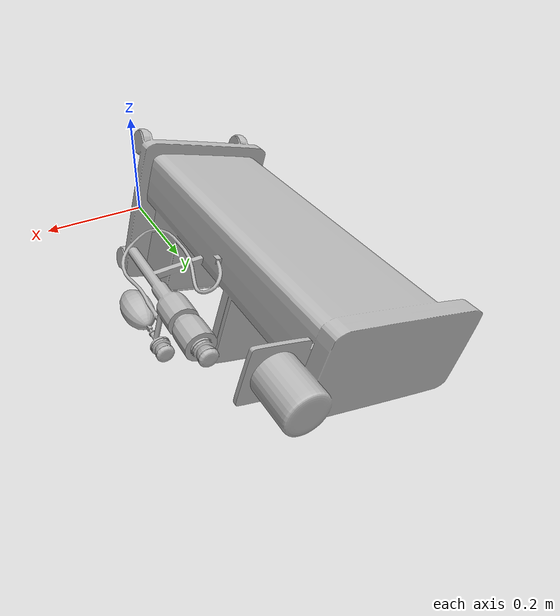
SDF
<?xml version='1.0'?>
<sdf version='1.6'>
  <model name='anest'>
    <link name='link_0'>
      <visual name='visual'>
        <pose frame=''>0 0 0 0 0 0</pose>
        <geometry>
          <mesh>
            <uri>model://anest/meshes/anest.obj</uri>
            <scale>0.5 0.5 0.5</scale>
          </mesh>
        </geometry>
      </visual>
      <collision name='collision'>
        <pose frame=''>0 0 0 0 0 0</pose>
        <geometry>
          <box>
            <size>1 1 1</size>
          </box>
        </geometry>
      </collision>
    </link>
    <static>1</static>
    <allow_auto_disable>1</allow_auto_disable>
  </model>
</sdf>
